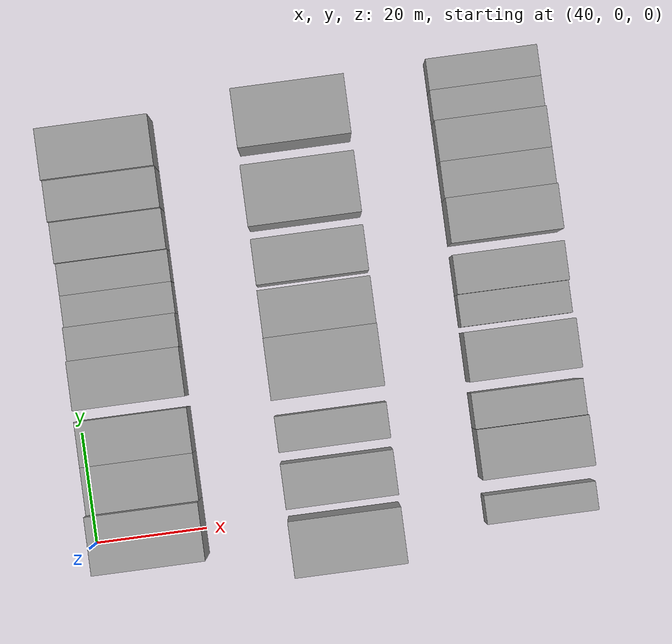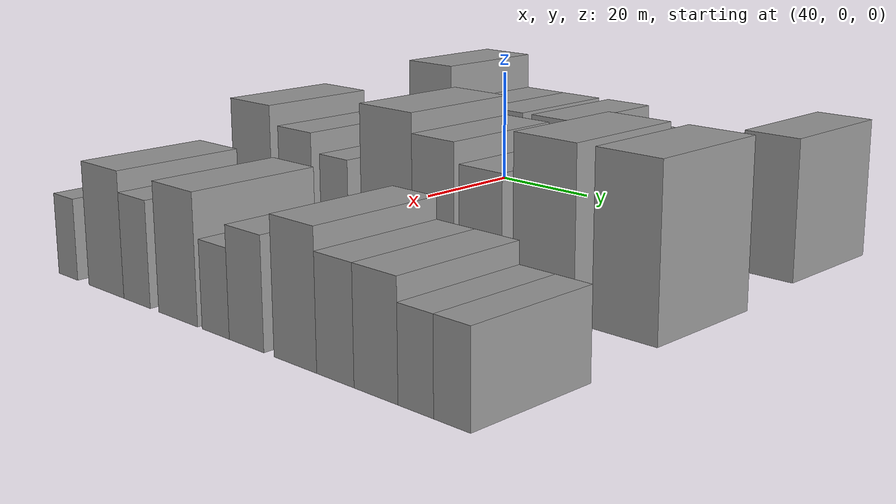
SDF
<sdf version="1.6">
 <world name="default">
  <model name="building_45">
   <static>1</static>
   <pose>50.0000 0.6288 0 0.000000 0.000000 0.000000</pose>
   <link name="link">
    <pose>0 0 12.00 0 0 0</pose>
    <collision name="collision"><geometry><box><size>20.0000 10.2893 24.0000</size></box></geometry></collision>
    <visual name="visual">
     <cast_shadows>0</cast_shadows>
     <geometry><box><size>20.0000 10.2893 24.0000</size></box></geometry>
     <material>
      <script>
       <uri>model://grey_wall/materials/scripts</uri>
       <uri>model://grey_wall/materials/textures</uri>
       <name>vrc/grey_wall</name>
      </script>
     </material>
    </visual>
   </link>
  </model>
  <model name="building_46">
   <static>1</static>
   <pose>50.0000 10.0186 0 0.000000 0.000000 0.000000</pose>
   <link name="link">
    <pose>0 0 9.00 0 0 0</pose>
    <collision name="collision"><geometry><box><size>20.0000 8.4903 18.0000</size></box></geometry></collision>
    <visual name="visual">
     <cast_shadows>0</cast_shadows>
     <geometry><box><size>20.0000 8.4903 18.0000</size></box></geometry>
     <material>
      <script>
       <uri>model://grey_wall/materials/scripts</uri>
       <uri>model://grey_wall/materials/textures</uri>
       <name>vrc/grey_wall</name>
      </script>
     </material>
    </visual>
   </link>
  </model>
  <model name="building_47">
   <static>1</static>
   <pose>50.0000 18.2953 0 0.000000 0.000000 0.000000</pose>
   <link name="link">
    <pose>0 0 9.00 0 0 0</pose>
    <collision name="collision"><geometry><box><size>20.0000 8.0630 18.0000</size></box></geometry></collision>
    <visual name="visual">
     <cast_shadows>0</cast_shadows>
     <geometry><box><size>20.0000 8.0630 18.0000</size></box></geometry>
     <material>
      <script>
       <uri>model://grey_wall/materials/scripts</uri>
       <uri>model://grey_wall/materials/textures</uri>
       <name>vrc/grey_wall</name>
      </script>
     </material>
    </visual>
   </link>
  </model>
  <model name="building_48">
   <static>1</static>
   <pose>50.0000 28.7186 0 0.000000 0.000000 0.000000</pose>
   <link name="link">
    <pose>0 0 9.00 0 0 0</pose>
    <collision name="collision"><geometry><box><size>20.0000 8.7836 18.0000</size></box></geometry></collision>
    <visual name="visual">
     <cast_shadows>0</cast_shadows>
     <geometry><box><size>20.0000 8.7836 18.0000</size></box></geometry>
     <material>
      <script>
       <uri>model://grey_wall/materials/scripts</uri>
       <uri>model://grey_wall/materials/textures</uri>
       <name>vrc/grey_wall</name>
      </script>
     </material>
    </visual>
   </link>
  </model>
  <model name="building_49">
   <static>1</static>
   <pose>50.0000 36.1253 0 0.000000 0.000000 0.000000</pose>
   <link name="link">
    <pose>0 0 7.50 0 0 0</pose>
    <collision name="collision"><geometry><box><size>20.0000 6.0298 15.0000</size></box></geometry></collision>
    <visual name="visual">
     <cast_shadows>0</cast_shadows>
     <geometry><box><size>20.0000 6.0298 15.0000</size></box></geometry>
     <material>
      <script>
       <uri>model://grey_wall/materials/scripts</uri>
       <uri>model://grey_wall/materials/textures</uri>
       <name>vrc/grey_wall</name>
      </script>
     </material>
    </visual>
   </link>
  </model>
  <model name="building_50">
   <static>1</static>
   <pose>50.0000 41.9829 0 0.000000 0.000000 0.000000</pose>
   <link name="link">
    <pose>0 0 6.00 0 0 0</pose>
    <collision name="collision"><geometry><box><size>20.0000 5.6853 12.0000</size></box></geometry></collision>
    <visual name="visual">
     <cast_shadows>0</cast_shadows>
     <geometry><box><size>20.0000 5.6853 12.0000</size></box></geometry>
     <material>
      <script>
       <uri>model://grey_wall/materials/scripts</uri>
       <uri>model://grey_wall/materials/textures</uri>
       <name>vrc/grey_wall</name>
      </script>
     </material>
    </visual>
   </link>
  </model>
  <model name="building_51">
   <static>1</static>
   <pose>50.0000 47.6928 0 0.000000 0.000000 0.000000</pose>
   <link name="link">
    <pose>0 0 6.00 0 0 0</pose>
    <collision name="collision"><geometry><box><size>20.0000 5.7346 12.0000</size></box></geometry></collision>
    <visual name="visual">
     <cast_shadows>0</cast_shadows>
     <geometry><box><size>20.0000 5.7346 12.0000</size></box></geometry>
     <material>
      <script>
       <uri>model://grey_wall/materials/scripts</uri>
       <uri>model://grey_wall/materials/textures</uri>
       <name>vrc/grey_wall</name>
      </script>
     </material>
    </visual>
   </link>
  </model>
  <model name="building_52">
   <static>1</static>
   <pose>50.0000 54.1982 0 0.000000 0.000000 0.000000</pose>
   <link name="link">
    <pose>0 0 7.50 0 0 0</pose>
    <collision name="collision"><geometry><box><size>20.0000 7.2763 15.0000</size></box></geometry></collision>
    <visual name="visual">
     <cast_shadows>0</cast_shadows>
     <geometry><box><size>20.0000 7.2763 15.0000</size></box></geometry>
     <material>
      <script>
       <uri>model://grey_wall/materials/scripts</uri>
       <uri>model://grey_wall/materials/textures</uri>
       <name>vrc/grey_wall</name>
      </script>
     </material>
    </visual>
   </link>
  </model>
  <model name="building_53">
   <static>1</static>
   <pose>50.0000 61.4777 0 0.000000 0.000000 0.000000</pose>
   <link name="link">
    <pose>0 0 9.00 0 0 0</pose>
    <collision name="collision"><geometry><box><size>20.0000 7.2826 18.0000</size></box></geometry></collision>
    <visual name="visual">
     <cast_shadows>0</cast_shadows>
     <geometry><box><size>20.0000 7.2826 18.0000</size></box></geometry>
     <material>
      <script>
       <uri>model://grey_wall/materials/scripts</uri>
       <uri>model://grey_wall/materials/textures</uri>
       <name>vrc/grey_wall</name>
      </script>
     </material>
    </visual>
   </link>
  </model>
  <model name="building_54">
   <static>1</static>
   <pose>50.0000 69.6725 0 0.000000 0.000000 0.000000</pose>
   <link name="link">
    <pose>0 0 10.50 0 0 0</pose>
    <collision name="collision"><geometry><box><size>20.0000 9.1071 21.0000</size></box></geometry></collision>
    <visual name="visual">
     <cast_shadows>0</cast_shadows>
     <geometry><box><size>20.0000 9.1071 21.0000</size></box></geometry>
     <material>
      <script>
       <uri>model://grey_wall/materials/scripts</uri>
       <uri>model://grey_wall/materials/textures</uri>
       <name>vrc/grey_wall</name>
      </script>
     </material>
    </visual>
   </link>
  </model>
  <model name="building_126">
   <static>1</static>
   <pose>85.0000 -4.7849 0 0.000000 0.000000 0.000000</pose>
   <link name="link">
    <pose>0 0 10.50 0 0 0</pose>
    <collision name="collision"><geometry><box><size>20.0000 9.9741 21.0000</size></box></geometry></collision>
    <visual name="visual">
     <cast_shadows>0</cast_shadows>
     <geometry><box><size>20.0000 9.9741 21.0000</size></box></geometry>
     <material>
      <script>
       <uri>model://grey_wall/materials/scripts</uri>
       <uri>model://grey_wall/materials/textures</uri>
       <name>vrc/grey_wall</name>
      </script>
     </material>
    </visual>
   </link>
  </model>
  <model name="building_127">
   <static>1</static>
   <pose>85.0000 6.2034 0 0.000000 0.000000 0.000000</pose>
   <link name="link">
    <pose>0 0 9.00 0 0 0</pose>
    <collision name="collision"><geometry><box><size>20.0000 8.0025 18.0000</size></box></geometry></collision>
    <visual name="visual">
     <cast_shadows>0</cast_shadows>
     <geometry><box><size>20.0000 8.0025 18.0000</size></box></geometry>
     <material>
      <script>
       <uri>model://grey_wall/materials/scripts</uri>
       <uri>model://grey_wall/materials/textures</uri>
       <name>vrc/grey_wall</name>
      </script>
     </material>
    </visual>
   </link>
  </model>
  <model name="building_128">
   <static>1</static>
   <pose>85.0000 15.3976 0 0.000000 0.000000 0.000000</pose>
   <link name="link">
    <pose>0 0 7.50 0 0 0</pose>
    <collision name="collision"><geometry><box><size>20.0000 6.3859 15.0000</size></box></geometry></collision>
    <visual name="visual">
     <cast_shadows>0</cast_shadows>
     <geometry><box><size>20.0000 6.3859 15.0000</size></box></geometry>
     <material>
      <script>
       <uri>model://grey_wall/materials/scripts</uri>
       <uri>model://grey_wall/materials/textures</uri>
       <name>vrc/grey_wall</name>
      </script>
     </material>
    </visual>
   </link>
  </model>
  <model name="building_129">
   <static>1</static>
   <pose>85.0000 27.0782 0 0.000000 0.000000 0.000000</pose>
   <link name="link">
    <pose>0 0 12.00 0 0 0</pose>
    <collision name="collision"><geometry><box><size>20.0000 10.9752 24.0000</size></box></geometry></collision>
    <visual name="visual">
     <cast_shadows>0</cast_shadows>
     <geometry><box><size>20.0000 10.9752 24.0000</size></box></geometry>
     <material>
      <script>
       <uri>model://grey_wall/materials/scripts</uri>
       <uri>model://grey_wall/materials/textures</uri>
       <name>vrc/grey_wall</name>
      </script>
     </material>
    </visual>
   </link>
  </model>
  <model name="building_130">
   <static>1</static>
   <pose>85.0000 36.7725 0 0.000000 0.000000 0.000000</pose>
   <link name="link">
    <pose>0 0 10.50 0 0 0</pose>
    <collision name="collision"><geometry><box><size>20.0000 8.4135 21.0000</size></box></geometry></collision>
    <visual name="visual">
     <cast_shadows>0</cast_shadows>
     <geometry><box><size>20.0000 8.4135 21.0000</size></box></geometry>
     <material>
      <script>
       <uri>model://grey_wall/materials/scripts</uri>
       <uri>model://grey_wall/materials/textures</uri>
       <name>vrc/grey_wall</name>
      </script>
     </material>
    </visual>
   </link>
  </model>
  <model name="building_131">
   <static>1</static>
   <pose>85.0000 46.0508 0 0.000000 0.000000 0.000000</pose>
   <link name="link">
    <pose>0 0 9.00 0 0 0</pose>
    <collision name="collision"><geometry><box><size>20.0000 8.1430 18.0000</size></box></geometry></collision>
    <visual name="visual">
     <cast_shadows>0</cast_shadows>
     <geometry><box><size>20.0000 8.1430 18.0000</size></box></geometry>
     <material>
      <script>
       <uri>model://grey_wall/materials/scripts</uri>
       <uri>model://grey_wall/materials/textures</uri>
       <name>vrc/grey_wall</name>
      </script>
     </material>
    </visual>
   </link>
  </model>
  <model name="building_132">
   <static>1</static>
   <pose>85.0000 57.5286 0 0.000000 0.000000 0.000000</pose>
   <link name="link">
    <pose>0 0 12.00 0 0 0</pose>
    <collision name="collision"><geometry><box><size>20.0000 10.8127 24.0000</size></box></geometry></collision>
    <visual name="visual">
     <cast_shadows>0</cast_shadows>
     <geometry><box><size>20.0000 10.8127 24.0000</size></box></geometry>
     <material>
      <script>
       <uri>model://grey_wall/materials/scripts</uri>
       <uri>model://grey_wall/materials/textures</uri>
       <name>vrc/grey_wall</name>
      </script>
     </material>
    </visual>
   </link>
  </model>
  <model name="building_133">
   <static>1</static>
   <pose>85.0000 71.1728 0 0.000000 0.000000 0.000000</pose>
   <link name="link">
    <pose>0 0 12.00 0 0 0</pose>
    <collision name="collision"><geometry><box><size>20.0000 10.4758 24.0000</size></box></geometry></collision>
    <visual name="visual">
     <cast_shadows>0</cast_shadows>
     <geometry><box><size>20.0000 10.4758 24.0000</size></box></geometry>
     <material>
      <script>
       <uri>model://grey_wall/materials/scripts</uri>
       <uri>model://grey_wall/materials/textures</uri>
       <name>vrc/grey_wall</name>
      </script>
     </material>
    </visual>
   </link>
  </model>
  <model name="building_196">
   <static>1</static>
   <pose>120.0000 -2.8395 0 0.000000 0.000000 0.000000</pose>
   <link name="link">
    <pose>0 0 6.00 0 0 0</pose>
    <collision name="collision"><geometry><box><size>20.0000 5.1345 12.0000</size></box></geometry></collision>
    <visual name="visual">
     <cast_shadows>0</cast_shadows>
     <geometry><box><size>20.0000 5.1345 12.0000</size></box></geometry>
     <material>
      <script>
       <uri>model://grey_wall/materials/scripts</uri>
       <uri>model://grey_wall/materials/textures</uri>
       <name>vrc/grey_wall</name>
      </script>
     </material>
    </visual>
   </link>
  </model>
  <model name="building_197">
   <static>1</static>
   <pose>120.0000 7.2102 0 0.000000 0.000000 0.000000</pose>
   <link name="link">
    <pose>0 0 9.00 0 0 0</pose>
    <collision name="collision"><geometry><box><size>20.0000 8.9649 18.0000</size></box></geometry></collision>
    <visual name="visual">
     <cast_shadows>0</cast_shadows>
     <geometry><box><size>20.0000 8.9649 18.0000</size></box></geometry>
     <material>
      <script>
       <uri>model://grey_wall/materials/scripts</uri>
       <uri>model://grey_wall/materials/textures</uri>
       <name>vrc/grey_wall</name>
      </script>
     </material>
    </visual>
   </link>
  </model>
  <model name="building_198">
   <static>1</static>
   <pose>120.0000 14.9015 0 0.000000 0.000000 0.000000</pose>
   <link name="link">
    <pose>0 0 7.50 0 0 0</pose>
    <collision name="collision"><geometry><box><size>20.0000 6.4176 15.0000</size></box></geometry></collision>
    <visual name="visual">
     <cast_shadows>0</cast_shadows>
     <geometry><box><size>20.0000 6.4176 15.0000</size></box></geometry>
     <material>
      <script>
       <uri>model://grey_wall/materials/scripts</uri>
       <uri>model://grey_wall/materials/textures</uri>
       <name>vrc/grey_wall</name>
      </script>
     </material>
    </visual>
   </link>
  </model>
  <model name="building_199">
   <static>1</static>
   <pose>120.0000 24.5177 0 0.000000 0.000000 0.000000</pose>
   <link name="link">
    <pose>0 0 9.00 0 0 0</pose>
    <collision name="collision"><geometry><box><size>20.0000 8.8148 18.0000</size></box></geometry></collision>
    <visual name="visual">
     <cast_shadows>0</cast_shadows>
     <geometry><box><size>20.0000 8.8148 18.0000</size></box></geometry>
     <material>
      <script>
       <uri>model://grey_wall/materials/scripts</uri>
       <uri>model://grey_wall/materials/textures</uri>
       <name>vrc/grey_wall</name>
      </script>
     </material>
    </visual>
   </link>
  </model>
  <model name="building_200">
   <static>1</static>
   <pose>120.0000 32.8219 0 0.000000 0.000000 0.000000</pose>
   <link name="link">
    <pose>0 0 6.00 0 0 0</pose>
    <collision name="collision"><geometry><box><size>20.0000 5.7936 12.0000</size></box></geometry></collision>
    <visual name="visual">
     <cast_shadows>0</cast_shadows>
     <geometry><box><size>20.0000 5.7936 12.0000</size></box></geometry>
     <material>
      <script>
       <uri>model://grey_wall/materials/scripts</uri>
       <uri>model://grey_wall/materials/textures</uri>
       <name>vrc/grey_wall</name>
      </script>
     </material>
    </visual>
   </link>
  </model>
  <model name="building_201">
   <static>1</static>
   <pose>120.0000 39.2306 0 0.000000 0.000000 0.000000</pose>
   <link name="link">
    <pose>0 0 7.50 0 0 0</pose>
    <collision name="collision"><geometry><box><size>20.0000 7.0238 15.0000</size></box></geometry></collision>
    <visual name="visual">
     <cast_shadows>0</cast_shadows>
     <geometry><box><size>20.0000 7.0238 15.0000</size></box></geometry>
     <material>
      <script>
       <uri>model://grey_wall/materials/scripts</uri>
       <uri>model://grey_wall/materials/textures</uri>
       <name>vrc/grey_wall</name>
      </script>
     </material>
    </visual>
   </link>
  </model>
  <model name="building_202">
   <static>1</static>
   <pose>120.0000 48.7671 0 0.000000 0.000000 0.000000</pose>
   <link name="link">
    <pose>0 0 9.00 0 0 0</pose>
    <collision name="collision"><geometry><box><size>20.0000 8.0491 18.0000</size></box></geometry></collision>
    <visual name="visual">
     <cast_shadows>0</cast_shadows>
     <geometry><box><size>20.0000 8.0491 18.0000</size></box></geometry>
     <material>
      <script>
       <uri>model://grey_wall/materials/scripts</uri>
       <uri>model://grey_wall/materials/textures</uri>
       <name>vrc/grey_wall</name>
      </script>
     </material>
    </visual>
   </link>
  </model>
  <model name="building_203">
   <static>1</static>
   <pose>120.0000 56.1058 0 0.000000 0.000000 0.000000</pose>
   <link name="link">
    <pose>0 0 7.50 0 0 0</pose>
    <collision name="collision"><geometry><box><size>20.0000 6.6284 15.0000</size></box></geometry></collision>
    <visual name="visual">
     <cast_shadows>0</cast_shadows>
     <geometry><box><size>20.0000 6.6284 15.0000</size></box></geometry>
     <material>
      <script>
       <uri>model://grey_wall/materials/scripts</uri>
       <uri>model://grey_wall/materials/textures</uri>
       <name>vrc/grey_wall</name>
      </script>
     </material>
    </visual>
   </link>
  </model>
  <model name="building_204">
   <static>1</static>
   <pose>120.0000 63.0989 0 0.000000 0.000000 0.000000</pose>
   <link name="link">
    <pose>0 0 7.50 0 0 0</pose>
    <collision name="collision"><geometry><box><size>20.0000 7.3579 15.0000</size></box></geometry></collision>
    <visual name="visual">
     <cast_shadows>0</cast_shadows>
     <geometry><box><size>20.0000 7.3579 15.0000</size></box></geometry>
     <material>
      <script>
       <uri>model://grey_wall/materials/scripts</uri>
       <uri>model://grey_wall/materials/textures</uri>
       <name>vrc/grey_wall</name>
      </script>
     </material>
    </visual>
   </link>
  </model>
  <model name="building_205">
   <static>1</static>
   <pose>120.0000 69.5980 0 0.000000 0.000000 0.000000</pose>
   <link name="link">
    <pose>0 0 6.00 0 0 0</pose>
    <collision name="collision"><geometry><box><size>20.0000 5.6403 12.0000</size></box></geometry></collision>
    <visual name="visual">
     <cast_shadows>0</cast_shadows>
     <geometry><box><size>20.0000 5.6403 12.0000</size></box></geometry>
     <material>
      <script>
       <uri>model://grey_wall/materials/scripts</uri>
       <uri>model://grey_wall/materials/textures</uri>
       <name>vrc/grey_wall</name>
      </script>
     </material>
    </visual>
   </link>
  </model>
  <model name="building_206">
   <static>1</static>
   <pose>120.0000 75.2221 0 0.000000 0.000000 0.000000</pose>
   <link name="link">
    <pose>0 0 6.00 0 0 0</pose>
    <collision name="collision"><geometry><box><size>20.0000 5.6078 12.0000</size></box></geometry></collision>
    <visual name="visual">
     <cast_shadows>0</cast_shadows>
     <geometry><box><size>20.0000 5.6078 12.0000</size></box></geometry>
     <material>
      <script>
       <uri>model://grey_wall/materials/scripts</uri>
       <uri>model://grey_wall/materials/textures</uri>
       <name>vrc/grey_wall</name>
      </script>
     </material>
    </visual>
   </link>
  </model>
 </world>
</sdf>
